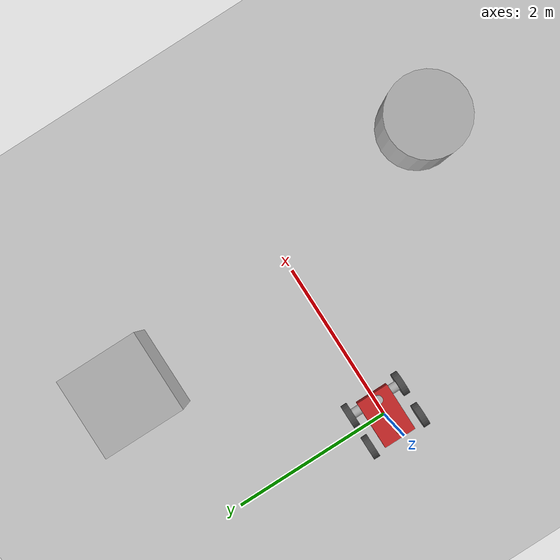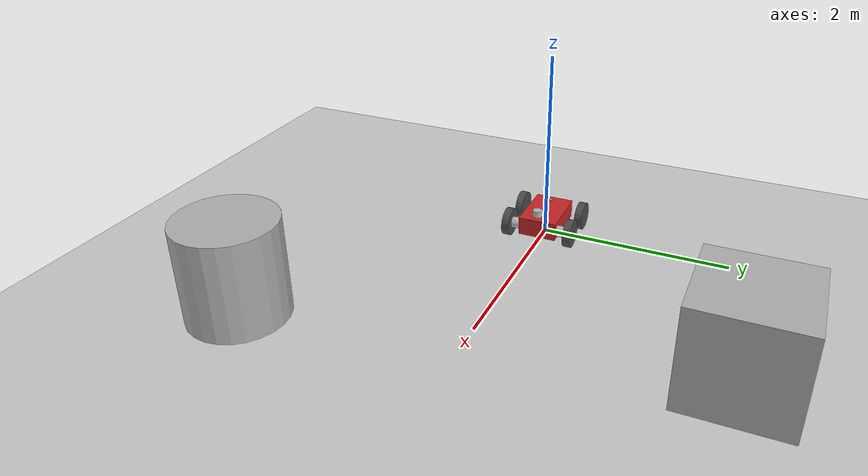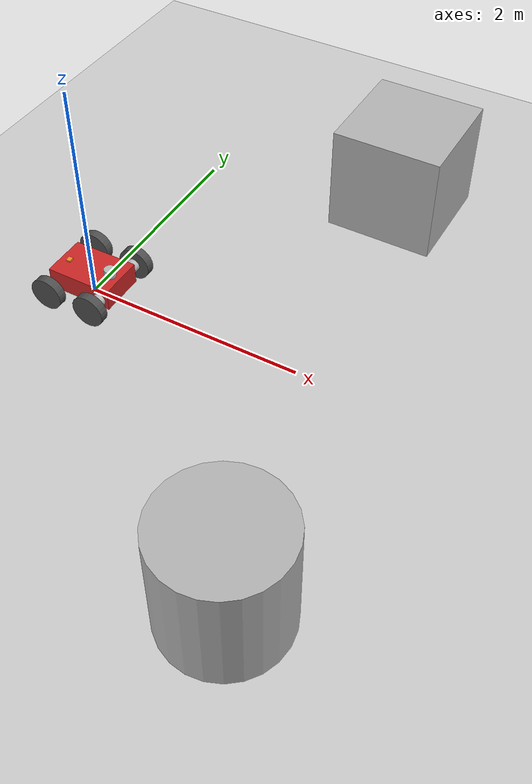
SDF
<sdf version='1.9'>
  <world name='demo'>
    <plugin name='ignition::gazebo::systems::Physics' filename='ignition-gazebo-physics-system'/>
    <plugin name='ignition::gazebo::systems::Sensors' filename='ignition-gazebo-sensors-system'>
      <render_engine>ogre2</render_engine>
    </plugin>
    <plugin name='ignition::gazebo::systems::Imu' filename='libignition-gazebo-imu-system.so'/>
    <plugin name='ignition::gazebo::systems::SceneBroadcaster' filename='ignition-gazebo-scene-broadcaster-system'/>
    <plugin name='ignition::gazebo::systems::UserCommands' filename='ignition-gazebo-user-commands-system'/>
    <plugin name='ack_gazebo::BasicSystem' filename='BasicSystem'/>
    <plugin name='ack_gazebo::FullSystem' filename='FullSystem'/>
    <gravity>0 0 -9.8</gravity>
    <magnetic_field>6e-06 2.3e-05 -4.2e-05</magnetic_field>
    <atmosphere type='adiabatic'/>
    <physics type='ode'>
      <max_step_size>0.001</max_step_size>
      <real_time_factor>1</real_time_factor>
      <real_time_update_rate>1000</real_time_update_rate>
    </physics>
    <scene>
      <ambient>0.4 0.4 0.4 1</ambient>
      <background>0.7 0.7 0.7 1</background>
      <shadows>true</shadows>
    </scene>
    <model name='ground_plane'>
      <static>true</static>
      <link name='link'>
        <collision name='collision'>
          <geometry>
            <plane>
              <normal>0 0 1</normal>
              <size>100 100</size>
            </plane>
          </geometry>
          <surface>
            <friction>
              <ode/>
            </friction>
            <bounce/>
            <contact/>
          </surface>
        </collision>
        <visual name='visual'>
          <geometry>
            <plane>
              <normal>0 0 1</normal>
              <size>100 100</size>
            </plane>
          </geometry>
          <material>
            <ambient>0.8 0.8 0.8 1</ambient>
            <diffuse>0.8 0.8 0.8 1</diffuse>
            <specular>0.8 0.8 0.8 1</specular>
          </material>
        </visual>
        <pose>0 0 0 0 -0 0</pose>
        <inertial>
          <pose>0 0 0 0 -0 0</pose>
          <mass>1</mass>
          <inertia>
            <ixx>1</ixx>
            <ixy>0</ixy>
            <ixz>0</ixz>
            <iyy>1</iyy>
            <iyz>0</iyz>
            <izz>1</izz>
          </inertia>
        </inertial>
        <enable_wind>false</enable_wind>
      </link>
      <pose>0 0 0 0 -0 0</pose>
      <self_collide>false</self_collide>
    </model>
    <model name='arv'>
      <self_collide>false</self_collide>
      <pose>0 -0 0.168499 0 0 0</pose>
      <frame name='_merged__arv__model__' attached_to='base_link'>
        <pose relative_to='__model__'>0 0 0 0 -0 0</pose>
      </frame>
      <link name='base_link'>
        <inertial>
          <pose>0 0 0 0 -0 0</pose>
          <mass>40</mass>
          <inertia>
            <ixx>0.689697</ixx>
            <ixy>0</ixy>
            <ixz>0</ixz>
            <iyy>1.34945</iyy>
            <iyz>0</iyz>
            <izz>1.34945</izz>
          </inertia>
        </inertial>
        <collision name='base_link_collision'>
          <pose>0 0 0 0 0 0</pose>
          <geometry>
            <box>
              <size>0.605 0.41 0.197</size>
            </box>
          </geometry>
          <surface>
            <contact>
              <ode/>
            </contact>
            <friction>
              <ode/>
            </friction>
            <bounce/>
          </surface>
        </collision>
        <visual name='base_link_visual'>
          <pose>0 0 0 0 0 0</pose>
          <geometry>
            <box>
              <size>0.605 0.41 0.197</size>
            </box>
          </geometry>
          <material>
            <script>
              <name>Gazebo/Red</name>
              <uri>file://media/materials/scripts/gazebo.material</uri>
            </script>
            <diffuse>1 0 0.125 1</diffuse>
            <ambient>1 0 0.125 1</ambient>
          </material>
        </visual>
        <pose>0 0 0 0 -0 0</pose>
        <enable_wind>false</enable_wind>
      </link>
      <joint name='LEFT_HINGE_JOINT' type='revolute'>
        <pose>0 0 0 0 -0 0</pose>
        <parent>base_link</parent>
        <child>LEFT_HINGE</child>
        <axis>
          <xyz>0 1 0</xyz>
          <limit>
            <lower>-1</lower>
            <upper>1</upper>
            <effort>100</effort>
            <velocity>1</velocity>
            <stiffness>100000000</stiffness>
            <dissipation>1</dissipation>
          </limit>
          <dynamics>
            <spring_reference>0</spring_reference>
            <spring_stiffness>0</spring_stiffness>
            <damping>0</damping>
            <friction>0</friction>
          </dynamics>
        </axis>
      </joint>
      <link name='LEFT_HINGE'>
        <pose>0.2159 0.255 -0.0185 -1.5708 0 -0</pose>
        <inertial>
          <pose>0 0 0 0 -0 0</pose>
          <mass>0.20000000000000001</mass>
          <inertia>
            <ixx>0.00034666699999999999</ixx>
            <ixy>0</ixy>
            <ixz>0</ixz>
            <iyy>0.00034666699999999999</iyy>
            <iyz>0</iyz>
            <izz>0.00036000000000000002</izz>
          </inertia>
        </inertial>
        <visual name='LEFT_HINGE_visual'>
          <pose>0 0 0 0 0 0</pose>
          <geometry>
            <cylinder>
              <length>0.10000000000000001</length>
              <radius>0.059999999999999998</radius>
            </cylinder>
          </geometry>
        </visual>
        <enable_wind>false</enable_wind>
      </link>
      <joint name='LEFT_FRONT_WHEEL_JOINT' type='revolute'>
        <pose>0 0 0 0 -0 0</pose>
        <parent>LEFT_HINGE</parent>
        <child>LEFT_FRONT_WHEEL</child>
        <axis>
          <xyz>0 0 1</xyz>
          <limit>
            <lower>-10000000000000000</lower>
            <upper>10000000000000000</upper>
            <effort>1</effort>
            <velocity>1</velocity>
            <stiffness>100000000</stiffness>
            <dissipation>1</dissipation>
          </limit>
          <dynamics>
            <spring_reference>0</spring_reference>
            <spring_stiffness>0</spring_stiffness>
            <damping>1</damping>
            <friction>0</friction>
          </dynamics>
        </axis>
      </joint>
      <link name='LEFT_FRONT_WHEEL'>
        <pose>0.2159 0.345 -0.0185 -1.5708 -0 -0</pose>
        <inertial>
          <pose>0 0 0 0 -0 0</pose>
          <mass>5</mass>
          <inertia>
            <ixx>0.030791700000000002</ixx>
            <ixy>0</ixy>
            <ixz>0</ixz>
            <iyy>0.030791700000000002</iyy>
            <iyz>0</iyz>
            <izz>0.056250000000000001</izz>
          </inertia>
        </inertial>
        <collision name='LEFT_FRONT_WHEEL_collision'>
          <pose>0 0 0 0 0 0</pose>
          <geometry>
            <cylinder>
              <length>0.080000000000000002</length>
              <radius>0.14999999999999999</radius>
            </cylinder>
          </geometry>
          <surface>
            <contact>
              <ode>
                <kp>10000000</kp>
                <kd>1</kd>
                <max_vel>100</max_vel>
                <min_depth>0.0050000000000000001</min_depth>
              </ode>
            </contact>
            <friction>
              <ode>
                <mu>0.5</mu>
                <mu2>0.5</mu2>
                <fdir1>1 0 0</fdir1>
              </ode>
            </friction>
            <bounce/>
          </surface>
        </collision>
        <visual name='LEFT_FRONT_WHEEL_visual'>
          <pose>0 0 0 0 0 0</pose>
          <geometry>
            <cylinder>
              <length>0.080000000000000002</length>
              <radius>0.14999999999999999</radius>
            </cylinder>
          </geometry>
          <material>
            <script>
              <name>Gazebo/DarkGrey</name>
              <uri>file://media/materials/scripts/gazebo.material</uri>
            </script>
          </material>
        </visual>
        <enable_wind>false</enable_wind>
      </link>
      <joint name='LEFT_REAR_WHEEL_JOINT' type='revolute'>
        <pose>0 0 0 0 -0 0</pose>
        <parent>base_link</parent>
        <child>LEFT_REAR_WHEEL</child>
        <axis>
          <xyz>0 0 1</xyz>
          <limit>
            <lower>-10000000000000000</lower>
            <upper>10000000000000000</upper>
            <effort>1</effort>
            <velocity>1</velocity>
            <stiffness>100000000</stiffness>
            <dissipation>1</dissipation>
          </limit>
          <dynamics>
            <spring_reference>0</spring_reference>
            <spring_stiffness>0</spring_stiffness>
            <damping>1</damping>
            <friction>0</friction>
          </dynamics>
        </axis>
      </joint>
      <link name='LEFT_REAR_WHEEL'>
        <pose>-0.2159 0.345 -0.0185 1.5708 0 -0</pose>
        <inertial>
          <pose>0 0 0 0 -0 0</pose>
          <mass>5</mass>
          <inertia>
            <ixx>0.030791700000000002</ixx>
            <ixy>0</ixy>
            <ixz>0</ixz>
            <iyy>0.030791700000000002</iyy>
            <iyz>0</iyz>
            <izz>0.056250000000000001</izz>
          </inertia>
        </inertial>
        <collision name='LEFT_REAR_WHEEL_collision'>
          <pose>0 0 0 0 0 0</pose>
          <geometry>
            <cylinder>
              <length>0.080000000000000002</length>
              <radius>0.14999999999999999</radius>
            </cylinder>
          </geometry>
          <surface>
            <contact>
              <ode>
                <kp>10000000</kp>
                <kd>1</kd>
                <max_vel>100</max_vel>
                <min_depth>0.0050000000000000001</min_depth>
              </ode>
            </contact>
            <friction>
              <ode>
                <mu>0</mu>
                <mu2>0</mu2>
                <fdir1>1 0 0</fdir1>
              </ode>
            </friction>
            <bounce/>
          </surface>
        </collision>
        <visual name='LEFT_REAR_WHEEL_visual'>
          <pose>0 0 0 0 0 0</pose>
          <geometry>
            <cylinder>
              <length>0.080000000000000002</length>
              <radius>0.14999999999999999</radius>
            </cylinder>
          </geometry>
          <material>
            <script>
              <name>Gazebo/DarkGrey</name>
              <uri>file://media/materials/scripts/gazebo.material</uri>
            </script>
          </material>
        </visual>
        <enable_wind>false</enable_wind>
      </link>
      <joint name='RIGHT_HINGE_JOINT' type='revolute'>
        <pose>0 -0 0 0 -0 0</pose>
        <parent>base_link</parent>
        <child>RIGHT_HINGE</child>
        <axis>
          <xyz>0 1 0</xyz>
          <limit>
            <lower>-1</lower>
            <upper>1</upper>
            <effort>100</effort>
            <velocity>1</velocity>
            <stiffness>100000000</stiffness>
            <dissipation>1</dissipation>
          </limit>
          <dynamics>
            <spring_reference>0</spring_reference>
            <spring_stiffness>0</spring_stiffness>
            <damping>0</damping>
            <friction>0</friction>
          </dynamics>
        </axis>
      </joint>
      <link name='RIGHT_HINGE'>
        <pose>0.2159 -0.255 -0.0185 -1.5708 0 -0</pose>
        <inertial>
          <pose>0 0 0 0 -0 0</pose>
          <mass>0.20000000000000001</mass>
          <inertia>
            <ixx>0.00034666699999999999</ixx>
            <ixy>0</ixy>
            <ixz>0</ixz>
            <iyy>0.00034666699999999999</iyy>
            <iyz>0</iyz>
            <izz>0.00036000000000000002</izz>
          </inertia>
        </inertial>
        <visual name='RIGHT_HINGE_visual'>
          <pose>0 0 0 0 0 0</pose>
          <geometry>
            <cylinder>
              <length>0.10000000000000001</length>
              <radius>0.059999999999999998</radius>
            </cylinder>
          </geometry>
        </visual>
        <enable_wind>false</enable_wind>
      </link>
      <joint name='RIGHT_FRONT_WHEEL_JOINT' type='revolute'>
        <pose>0 0 0 0 -0 0</pose>
        <parent>RIGHT_HINGE</parent>
        <child>RIGHT_FRONT_WHEEL</child>
        <axis>
          <xyz>0 0 1</xyz>
          <limit>
            <lower>-10000000000000000</lower>
            <upper>10000000000000000</upper>
            <effort>1</effort>
            <velocity>1</velocity>
            <stiffness>100000000</stiffness>
            <dissipation>1</dissipation>
          </limit>
          <dynamics>
            <spring_reference>0</spring_reference>
            <spring_stiffness>0</spring_stiffness>
            <damping>1</damping>
            <friction>0</friction>
          </dynamics>
        </axis>
      </joint>
      <link name='RIGHT_FRONT_WHEEL'>
        <pose>0.2159 -0.345 -0.0185 -1.5708 0 -0</pose>
        <inertial>
          <pose>0 0 0 0 -0 0</pose>
          <mass>5</mass>
          <inertia>
            <ixx>0.030791700000000002</ixx>
            <ixy>0</ixy>
            <ixz>0</ixz>
            <iyy>0.030791700000000002</iyy>
            <iyz>0</iyz>
            <izz>0.056250000000000001</izz>
          </inertia>
        </inertial>
        <collision name='RIGHT_FRONT_WHEEL_collision'>
          <pose>0 0 0 0 0 0</pose>
          <geometry>
            <cylinder>
              <length>0.080000000000000002</length>
              <radius>0.14999999999999999</radius>
            </cylinder>
          </geometry>
          <surface>
            <contact>
              <ode>
                <kp>10000000</kp>
                <kd>1</kd>
                <max_vel>100</max_vel>
                <min_depth>0.0050000000000000001</min_depth>
              </ode>
            </contact>
            <friction>
              <ode>
                <mu>0.5</mu>
                <mu2>0.5</mu2>
                <fdir1>1 0 0</fdir1>
              </ode>
            </friction>
            <bounce/>
          </surface>
        </collision>
        <visual name='RIGHT_FRONT_WHEEL_visual'>
          <pose>0 0 0 0 0 0</pose>
          <geometry>
            <cylinder>
              <length>0.080000000000000002</length>
              <radius>0.14999999999999999</radius>
            </cylinder>
          </geometry>
          <material>
            <script>
              <name>Gazebo/DarkGrey</name>
              <uri>file://media/materials/scripts/gazebo.material</uri>
            </script>
          </material>
        </visual>
        <enable_wind>false</enable_wind>
      </link>
      <joint name='RIGHT_REAR_WHEEL_JOINT' type='revolute'>
        <pose>0 0 0 0 -0 0</pose>
        <parent>base_link</parent>
        <child>RIGHT_REAR_WHEEL</child>
        <axis>
          <xyz>0 0 1</xyz>
          <limit>
            <lower>-10000000000000000</lower>
            <upper>10000000000000000</upper>
            <effort>1</effort>
            <velocity>1</velocity>
            <stiffness>100000000</stiffness>
            <dissipation>1</dissipation>
          </limit>
          <dynamics>
            <spring_reference>0</spring_reference>
            <spring_stiffness>0</spring_stiffness>
            <damping>1</damping>
            <friction>0</friction>
          </dynamics>
        </axis>
      </joint>
      <link name='RIGHT_REAR_WHEEL'>
        <pose>-0.2159 -0.345 -0.0185 1.5708 0 -0</pose>
        <inertial>
          <pose>0 0 0 0 -0 0</pose>
          <mass>5</mass>
          <inertia>
            <ixx>0.030791700000000002</ixx>
            <ixy>0</ixy>
            <ixz>0</ixz>
            <iyy>0.030791700000000002</iyy>
            <iyz>0</iyz>
            <izz>0.056250000000000001</izz>
          </inertia>
        </inertial>
        <collision name='RIGHT_REAR_WHEEL_collision'>
          <pose>0 0 0 0 0 0</pose>
          <geometry>
            <cylinder>
              <length>0.080000000000000002</length>
              <radius>0.14999999999999999</radius>
            </cylinder>
          </geometry>
          <surface>
            <contact>
              <ode>
                <kp>10000000</kp>
                <kd>1</kd>
                <max_vel>100</max_vel>
                <min_depth>0.0050000000000000001</min_depth>
              </ode>
            </contact>
            <friction>
              <ode>
                <mu>0</mu>
                <mu2>0</mu2>
                <fdir1>1 0 0</fdir1>
              </ode>
            </friction>
            <bounce/>
          </surface>
        </collision>
        <visual name='RIGHT_REAR_WHEEL_visual'>
          <pose>0 0 0 0 0 0</pose>
          <geometry>
            <cylinder>
              <length>0.080000000000000002</length>
              <radius>0.14999999999999999</radius>
            </cylinder>
          </geometry>
          <material>
            <script>
              <name>Gazebo/DarkGrey</name>
              <uri>file://media/materials/scripts/gazebo.material</uri>
            </script>
          </material>
        </visual>
        <enable_wind>false</enable_wind>
      </link>
      <joint name='imu_joint' type='fixed'>
        <pose>0 0 0 0 -0 0</pose>
        <parent>base_link</parent>
        <child>imu_link</child>
        <axis>
          <xyz>0 0 1</xyz>
          <limit>
            <lower>-10000000000000000</lower>
            <upper>10000000000000000</upper>
            <effort>inf</effort>
            <velocity>inf</velocity>
            <stiffness>100000000</stiffness>
            <dissipation>1</dissipation>
          </limit>
          <dynamics>
            <spring_reference>0</spring_reference>
            <spring_stiffness>0</spring_stiffness>
            <damping>0</damping>
            <friction>0</friction>
          </dynamics>
        </axis>
        <physics>
          <ode>
            <limit>
              <cfm>0</cfm>
              <erp>0.20000000000000001</erp>
            </limit>
          </ode>
        </physics>
      </joint>
      <link name='imu_link'>
        <pose>-0.2159 -0.02397 0.1035 0 -0 0</pose>
        <inertial>
          <pose>0 0 0 0 -0 0</pose>
          <mass>0.001</mass>
          <inertia>
            <ixx>0.0001</ixx>
            <ixy>0</ixy>
            <ixz>0</ixz>
            <iyy>9.9999999999999995e-07</iyy>
            <iyz>0</iyz>
            <izz>0.0001</izz>
          </inertia>
        </inertial>
        <collision name='imu_link_collision'>
          <pose>0 0 0 0 0 0</pose>
          <geometry>
            <box>
              <size>0.001 0.001 0.001</size>
            </box>
          </geometry>
          <surface>
            <contact>
              <ode/>
            </contact>
            <friction>
              <ode/>
            </friction>
            <bounce/>
          </surface>
        </collision>
        <visual name='imu_link_visual'>
          <pose>0 0 0 0 0 0</pose>
          <geometry>
            <box>
              <size>0.04 0.05 0.02</size>
            </box>
          </geometry>
          <material>
            <script>
              <name>Gazebo/Orange</name>
              <uri>file://media/materials/scripts/gazebo.material</uri>
            </script>
          </material>
        </visual>
        <sensor name='imu_sensor' type='imu'>
          <pose>0 0 0 0 -0 0</pose>
          <topic>/imu</topic>
          <update_rate>400</update_rate>
          <enable_metrics>false</enable_metrics>
          <imu>
            <orientation_reference_frame>
              <localization>CUSTOM</localization>
              <custom_rpy>0 0 0</custom_rpy>
              <grav_dir_x>1 0 0</grav_dir_x>
            </orientation_reference_frame>
            <angular_velocity>
              <x>
                <noise type='none'>
                  <mean>0</mean>
                  <stddev>0</stddev>
                  <bias_mean>0</bias_mean>
                  <bias_stddev>0</bias_stddev>
                  <dynamic_bias_stddev>0</dynamic_bias_stddev>
                  <dynamic_bias_correlation_time>0</dynamic_bias_correlation_time>
                  <precision>0</precision>
                </noise>
              </x>
              <y>
                <noise type='none'>
                  <mean>0</mean>
                  <stddev>0</stddev>
                  <bias_mean>0</bias_mean>
                  <bias_stddev>0</bias_stddev>
                  <dynamic_bias_stddev>0</dynamic_bias_stddev>
                  <dynamic_bias_correlation_time>0</dynamic_bias_correlation_time>
                  <precision>0</precision>
                </noise>
              </y>
              <z>
                <noise type='none'>
                  <mean>0</mean>
                  <stddev>0</stddev>
                  <bias_mean>0</bias_mean>
                  <bias_stddev>0</bias_stddev>
                  <dynamic_bias_stddev>0</dynamic_bias_stddev>
                  <dynamic_bias_correlation_time>0</dynamic_bias_correlation_time>
                  <precision>0</precision>
                </noise>
              </z>
            </angular_velocity>
            <linear_acceleration>
              <x>
                <noise type='none'>
                  <mean>0</mean>
                  <stddev>0</stddev>
                  <bias_mean>0</bias_mean>
                  <bias_stddev>0</bias_stddev>
                  <dynamic_bias_stddev>0</dynamic_bias_stddev>
                  <dynamic_bias_correlation_time>0</dynamic_bias_correlation_time>
                  <precision>0</precision>
                </noise>
              </x>
              <y>
                <noise type='none'>
                  <mean>0</mean>
                  <stddev>0</stddev>
                  <bias_mean>0</bias_mean>
                  <bias_stddev>0</bias_stddev>
                  <dynamic_bias_stddev>0</dynamic_bias_stddev>
                  <dynamic_bias_correlation_time>0</dynamic_bias_correlation_time>
                  <precision>0</precision>
                </noise>
              </y>
              <z>
                <noise type='none'>
                  <mean>0</mean>
                  <stddev>0</stddev>
                  <bias_mean>0</bias_mean>
                  <bias_stddev>0</bias_stddev>
                  <dynamic_bias_stddev>0</dynamic_bias_stddev>
                  <dynamic_bias_correlation_time>0</dynamic_bias_correlation_time>
                  <precision>0</precision>
                </noise>
              </z>
            </linear_acceleration>
            <enable_orientation>true</enable_orientation>
          </imu>
        </sensor>
        <enable_wind>false</enable_wind>
      </link>
      <joint name='lidar_joint' type='fixed'>
        <pose>0 0 0 0 -0 0</pose>
        <parent>base_link</parent>
        <child>lidar_link</child>
        <axis>
          <xyz>0 0 1</xyz>
          <limit>
            <lower>-10000000000000000</lower>
            <upper>10000000000000000</upper>
            <effort>inf</effort>
            <velocity>inf</velocity>
            <stiffness>100000000</stiffness>
            <dissipation>1</dissipation>
          </limit>
          <dynamics>
            <spring_reference>0</spring_reference>
            <spring_stiffness>0</spring_stiffness>
            <damping>0</damping>
            <friction>0</friction>
          </dynamics>
        </axis>
        <physics>
          <ode>
            <limit>
              <cfm>0</cfm>
              <erp>0.20000000000000001</erp>
            </limit>
          </ode>
        </physics>
      </joint>
      <link name='lidar_link'>
        <pose>0.2159 -0.02397 0.1485 0 -0 0</pose>
        <inertial>
          <pose>0 0 0 0 -0 0</pose>
          <mass>0.14999999999999999</mass>
          <inertia>
            <ixx>0.00016410700000000001</ixx>
            <ixy>0</ixy>
            <ixz>0</ixz>
            <iyy>0.00016410700000000001</iyy>
            <iyz>0</iyz>
            <izz>0.00019969200000000001</izz>
          </inertia>
        </inertial>
        <collision name='lidar_link_collision'>
          <pose>0 0 0 0 0 0</pose>
          <geometry>
            <cylinder>
              <length>0.0717</length>
              <radius>0.0516</radius>
            </cylinder>
          </geometry>
          <surface>
            <contact>
              <ode/>
            </contact>
            <friction>
              <ode/>
            </friction>
            <bounce/>
          </surface>
        </collision>
        <visual name='lidar_link_visual'>
          <pose>0 0 0 0 0 0</pose>
          <geometry>
            <cylinder>
              <length>0.0717</length>
              <radius>0.0516</radius>
            </cylinder>
          </geometry>
        </visual>
        <sensor name='gpu_lidar' type='gpu_lidar'>
          <pose>0 0 0 0 -0 0</pose>
          <topic>/scan</topic>
          <update_rate>400</update_rate>
          <enable_metrics>false</enable_metrics>
          <lidar>
            <scan>
              <horizontal>
                <samples>640</samples>
                <resolution>1</resolution>
                <min_angle>-1.3962600000000001</min_angle>
                <max_angle>1.3962600000000001</max_angle>
              </horizontal>
              <vertical>
                <samples>1</samples>
                <min_angle>0</min_angle>
                <max_angle>0</max_angle>
                <resolution>1</resolution>
              </vertical>
            </scan>
            <range>
              <min>0.080000000000000002</min>
              <max>10</max>
              <resolution>0.01</resolution>
            </range>
            <noise>
              <type>gaussian</type>
              <mean>0</mean>
              <stddev>0.001</stddev>
            </noise>
            <visibility_mask>4294967295</visibility_mask>
          </lidar>
        </sensor>
        <enable_wind>false</enable_wind>
      </link>
      <plugin name='ignition::gazebo::systems::AckermannSteering' filename='ignition-gazebo-ackermann-steering-system'>
        <left_joint>LEFT_FRONT_WHEEL_JOINT</left_joint>
        <right_joint>RIGHT_FRONT_WHEEL_JOINT</right_joint>
        <left_steering_joint>LEFT_HINGE_JOINT</left_steering_joint>
        <right_steering_joint>RIGHT_HINGE_JOINT</right_steering_joint>
        <wheel_separation>1.25</wheel_separation>
        <kingpin_width>0.8</kingpin_width>
        <wheel_base>1.0</wheel_base>
        <steering_limit>0.5</steering_limit>
        <wheel_radius>0.3</wheel_radius>
        <odom_publish_frequency>1</odom_publish_frequency>
        <min_velocity>0</min_velocity>
        <max_velocity>10</max_velocity>
        <min_acceleration>0</min_acceleration>
        <max_acceleration>10</max_acceleration>
        <min_jerk>-1</min_jerk>
        <max_jerk>1</max_jerk>
        <topic>arv/cmd_vel</topic>
        <odom_topic>arv/odometry</odom_topic>
      </plugin>
      <frame name='base_to_base_inertia' attached_to='base_link'>
        <pose>0 0 0 0 -0 0</pose>
      </frame>
      <frame name='base_inertia' attached_to='base_to_base_inertia'/>
      <plugin name='ignition::gazebo::systems::JointStatePublisher' filename='ignition-gazebo-joint-state-publisher-system'/>
      <plugin name='ignition::gazebo::systems::PosePublisher' filename='ignition-gazebo-pose-publisher-system'>
        <publish_link_pose>true</publish_link_pose>
        <use_pose_vector_msg>true</use_pose_vector_msg>
        <static_publisher>true</static_publisher>
        <static_update_frequency>1</static_update_frequency>
      </plugin>
      <plugin name='ignition::gazebo::systems::OdometryPublisher' filename='ignition-gazebo-odometry-publisher-system'>
        <odom_frame>arv/odom</odom_frame>
        <robot_base_frame>arv</robot_base_frame>
      </plugin>
      <static>false</static>
    </model>
    <model name='cylinder'>
      <pose>2.62037 -2.13855 0.499999 0 0 -0</pose>
      <link name='cylinder_link'>
        <inertial>
          <inertia>
            <ixx>0.14580000000000001</ixx>
            <ixy>0</ixy>
            <ixz>0</ixz>
            <iyy>0.14580000000000001</iyy>
            <iyz>0</iyz>
            <izz>0.125</izz>
          </inertia>
          <mass>1</mass>
          <pose>0 0 0 0 -0 0</pose>
        </inertial>
        <collision name='cylinder_collision'>
          <geometry>
            <cylinder>
              <radius>0.5</radius>
              <length>1</length>
            </cylinder>
          </geometry>
          <surface>
            <friction>
              <ode/>
            </friction>
            <bounce/>
            <contact/>
          </surface>
        </collision>
        <visual name='cylinder_visual'>
          <geometry>
            <cylinder>
              <radius>0.5</radius>
              <length>1</length>
            </cylinder>
          </geometry>
          <material>
            <ambient>0.3 0.3 0.3 1</ambient>
            <diffuse>0.7 0.7 0.7 1</diffuse>
            <specular>1 1 1 1</specular>
          </material>
        </visual>
        <pose>0 0 0 0 -0 0</pose>
        <enable_wind>false</enable_wind>
      </link>
      <static>false</static>
      <self_collide>false</self_collide>
    </model>
    <model name='box'>
      <pose>1.85895 2.33811 0.5 0 0 -0</pose>
      <link name='box_link'>
        <inertial>
          <inertia>
            <ixx>0.16666</ixx>
            <ixy>0</ixy>
            <ixz>0</ixz>
            <iyy>0.16666</iyy>
            <iyz>0</iyz>
            <izz>0.16666</izz>
          </inertia>
          <mass>1</mass>
          <pose>0 0 0 0 -0 0</pose>
        </inertial>
        <collision name='box_collision'>
          <geometry>
            <box>
              <size>1 1 1</size>
            </box>
          </geometry>
          <surface>
            <friction>
              <ode/>
            </friction>
            <bounce/>
            <contact/>
          </surface>
        </collision>
        <visual name='box_visual'>
          <geometry>
            <box>
              <size>1 1 1</size>
            </box>
          </geometry>
          <material>
            <ambient>0.3 0.3 0.3 1</ambient>
            <diffuse>0.7 0.7 0.7 1</diffuse>
            <specular>1 1 1 1</specular>
          </material>
        </visual>
        <pose>0 0 0 0 -0 0</pose>
        <enable_wind>false</enable_wind>
      </link>
      <static>false</static>
      <self_collide>false</self_collide>
    </model>
    <light name='sun' type='directional'>
      <pose>0 0 10 0 -0 0</pose>
      <cast_shadows>true</cast_shadows>
      <intensity>1</intensity>
      <direction>-0.5 0.1 -0.9</direction>
      <diffuse>0.8 0.8 0.8 1</diffuse>
      <specular>0.2 0.2 0.2 1</specular>
      <attenuation>
        <range>1000</range>
        <linear>0.01</linear>
        <constant>0.90000000000000002</constant>
        <quadratic>0.001</quadratic>
      </attenuation>
      <spot>
        <inner_angle>0</inner_angle>
        <outer_angle>0</outer_angle>
        <falloff>0</falloff>
      </spot>
    </light>
  </world>
</sdf>
